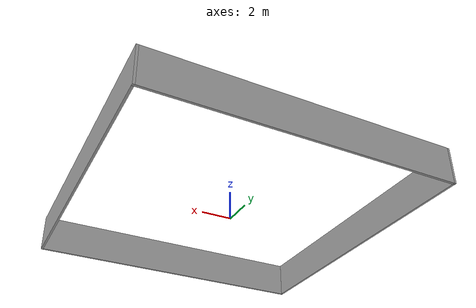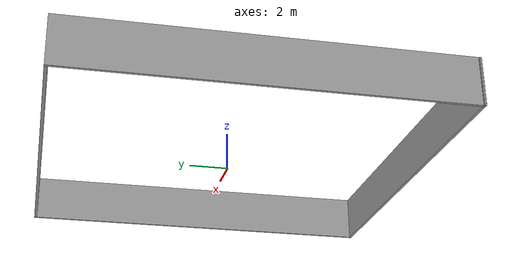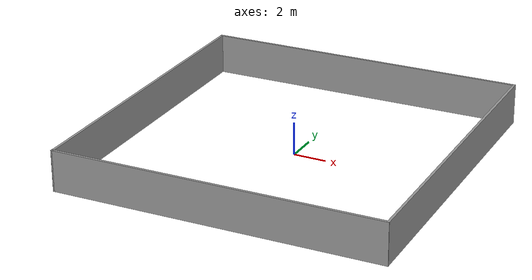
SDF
<?xml version='1.0'?>
<sdf version='1.6'>
  <model name='building_box'>
    <pose frame=''>0.051953 -0.144751 0 0 -0 0</pose>
    <link name='Wall_2'>
      <collision name='Wall_2_Collision'>
        <geometry>
          <box>
            <size>20 0.15 2.5</size>
          </box>
        </geometry>
        <pose frame=''>0 0 1.25 0 -0 0</pose>
      </collision>
      <visual name='Wall_2_Visual'>
        <pose frame=''>0 0 1.25 0 -0 0</pose>
        <geometry>
          <box>
            <size>20 0.15 2.5</size>
          </box>
        </geometry>
        <material>
          <script>
            <uri>file://media/materials/scripts/gazebo.material</uri>
            <name>Gazebo/Grey</name>
          </script>
          <ambient>1 1 1 1</ambient>
        </material>
      </visual>
      <pose frame=''>0.000628 -9.91882 0 0 -0 0</pose>
    </link>
    <link name='Wall_4'>
      <collision name='Wall_4_Collision'>
        <geometry>
          <box>
            <size>0.165363 0.15 2.5</size>
          </box>
        </geometry>
        <pose frame=''>0 0 1.25 0 -0 0</pose>
      </collision>
      <visual name='Wall_4_Visual'>
        <pose frame=''>0 0 1.25 0 -0 0</pose>
        <geometry>
          <box>
            <size>0.165363 0.15 2.5</size>
          </box>
        </geometry>
        <material>
          <script>
            <uri>file://media/materials/scripts/gazebo.material</uri>
            <name>Gazebo/Grey</name>
          </script>
          <ambient>1 1 1 1</ambient>
        </material>
      </visual>
      <pose frame=''>-9.91693 -9.91693 0 0 -0 0.24861</pose>
    </link>
    <link name='Wall_5'>
      <collision name='Wall_5_Collision'>
        <geometry>
          <box>
            <size>20 0.15 2.5</size>
          </box>
        </geometry>
        <pose frame=''>0 0 1.25 0 -0 0</pose>
      </collision>
      <visual name='Wall_5_Visual'>
        <pose frame=''>0 0 1.25 0 -0 0</pose>
        <geometry>
          <box>
            <size>20 0.15 2.5</size>
          </box>
        </geometry>
        <material>
          <script>
            <uri>file://media/materials/scripts/gazebo.material</uri>
            <name>Gazebo/Grey</name>
          </script>
          <ambient>1 1 1 1</ambient>
        </material>
      </visual>
      <pose frame=''>-9.90948 0.009964 0 0 -0 1.5708</pose>
    </link>
    <link name='Wall_6'>
      <collision name='Wall_6_Collision'>
        <geometry>
          <box>
            <size>20 0.15 2.5</size>
          </box>
        </geometry>
        <pose frame=''>0 0 1.25 0 -0 0</pose>
      </collision>
      <visual name='Wall_6_Visual'>
        <pose frame=''>0 0 1.25 0 -0 0</pose>
        <geometry>
          <box>
            <size>20 0.15 2.5</size>
          </box>
        </geometry>
        <material>
          <script>
            <uri>file://media/materials/scripts/gazebo.material</uri>
            <name>Gazebo/Grey</name>
          </script>
          <ambient>1 1 1 1</ambient>
        </material>
      </visual>
      <pose frame=''>0.015519 9.93496 0 0 -0 0</pose>
    </link>
    <link name='Wall_7'>
      <collision name='Wall_7_Collision'>
        <geometry>
          <box>
            <size>20 0.15 2.5</size>
          </box>
        </geometry>
        <pose frame=''>0 0 1.25 0 -0 0</pose>
      </collision>
      <visual name='Wall_7_Visual'>
        <pose frame=''>0 0 1.25 0 -0 0</pose>
        <geometry>
          <box>
            <size>20 0.15 2.5</size>
          </box>
        </geometry>
        <material>
          <script>
            <uri>file://media/materials/scripts/gazebo.material</uri>
            <name>Gazebo/Grey</name>
          </script>
          <ambient>1 1 1 1</ambient>
        </material>
      </visual>
      <pose frame=''>9.94052 0.009964 0 0 0 -1.5708</pose>
    </link>
    <static>1</static>
  </model>
</sdf>
